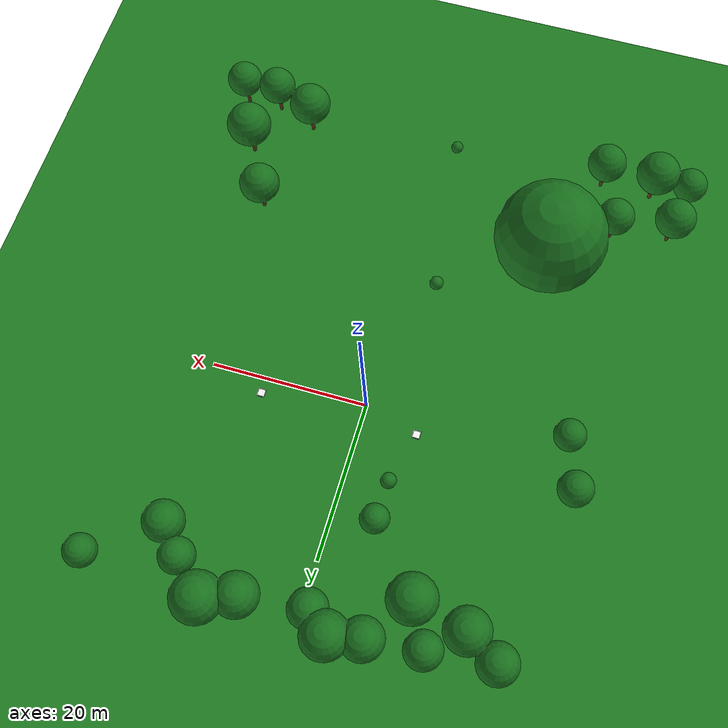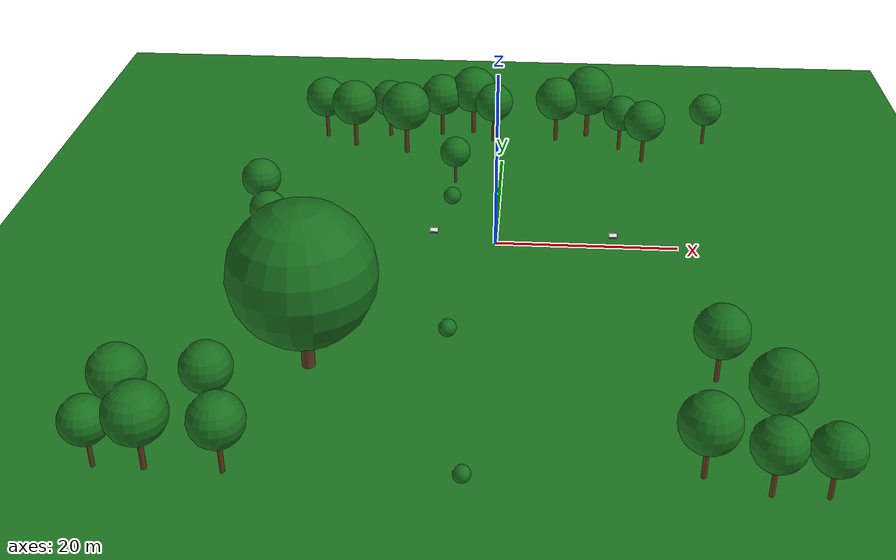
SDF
<sdf version="1.9">
 <world name="fei_lrs_precision_landing_world">
  <plugin filename="gz-sim-physics-system" name="gz::sim::systems::Physics"/>
  <plugin filename="gz-sim-sensors-system" name="gz::sim::systems::Sensors">
   <render_engine>ogre2</render_engine>
  </plugin>
  <plugin filename="gz-sim-user-commands-system" name="gz::sim::systems::UserCommands"/>
  <plugin filename="gz-sim-scene-broadcaster-system" name="gz::sim::systems::SceneBroadcaster"/>
  <plugin filename="gz-sim-imu-system" name="gz::sim::systems::Imu"/>
  <plugin filename="gz-sim-navsat-system" name="gz::sim::systems::NavSat"/>
  <plugin filename="gz-sim-contact-system" name="gz::sim::systems::Contact"/>
  <model name="ground_plane">
   <static>true</static>
   <link name="link">
    <collision name="collision">
     <geometry><plane><normal>0 0 1</normal><size>120 120</size></plane></geometry>
     <surface>
      <contact><collide_bitmask>65535</collide_bitmask></contact>
      <friction><ode><mu>100</mu><mu2>50</mu2></ode></friction>
     </surface>
    </collision>
    <visual name="visual">
     <cast_shadows>false</cast_shadows>
     <geometry><plane><normal>0 0 1</normal><size>120 120</size></plane></geometry>
     <material>
      <ambient>0.05 0.20 0.05 1</ambient>
      <diffuse>0.13 0.50 0.14 1</diffuse>
      <specular>0.02 0.04 0.02 1</specular>
     </material>
    </visual>
   </link>
  </model>
  <light name="sun" type="directional">
   <pose>0 0 10 0 0 0</pose>
   <diffuse>0.800000012 0.800000012 0.800000012 1</diffuse>
   <specular>0.200000003 0.200000003 0.200000003 1</specular>
   <attenuation>
    <range>1000</range>
    <constant>0.90000000000000002</constant>
    <linear>0.01</linear>
    <quadratic>0.001</quadratic>
   </attenuation>
   <direction>-0.5 0.10000000000000001 -0.90000000000000002</direction>
   <spot><inner_angle>0</inner_angle><outer_angle>0</outer_angle><falloff>0</falloff></spot>
  </light>
  <model name="tree_n1">
   <static>true</static>
   <pose>-22.80 26.10 0 0 0 0</pose>
   <link name="link">
    <visual name="trunk">
     <pose>0 0 2.00 0 0 0</pose>
     <geometry><cylinder><radius>0.22</radius><length>4.00</length></cylinder></geometry>
     <material>
      <ambient>0.25 0.15 0.06 1</ambient>
      <diffuse>0.35 0.22 0.10 1</diffuse>
      <specular>0.05 0.05 0.05 1</specular>
     </material>
    </visual>
    <visual name="canopy">
     <pose>0 0 5.50 0 0 0</pose>
     <geometry><sphere><radius>2.50</radius></sphere></geometry>
     <material>
      <ambient>0.05 0.18 0.05 1</ambient>
      <diffuse>0.10 0.45 0.12 1</diffuse>
      <specular>0.02 0.05 0.02 1</specular>
     </material>
    </visual>
    <collision name="collision">
     <pose>0 0 4.00 0 0 0</pose>
     <geometry><cylinder><radius>1.38</radius><length>8.00</length></cylinder></geometry>
    </collision>
   </link>
  </model>
  <model name="tree_n2">
   <static>true</static>
   <pose>-18.80 23.70 0 0 0 0</pose>
   <link name="link">
    <visual name="trunk">
     <pose>0 0 2.10 0 0 0</pose>
     <geometry><cylinder><radius>0.25</radius><length>4.20</length></cylinder></geometry>
     <material>
      <ambient>0.25 0.15 0.06 1</ambient>
      <diffuse>0.35 0.22 0.10 1</diffuse>
      <specular>0.05 0.05 0.05 1</specular>
     </material>
    </visual>
    <visual name="canopy">
     <pose>0 0 5.88 0 0 0</pose>
     <geometry><sphere><radius>2.80</radius></sphere></geometry>
     <material>
      <ambient>0.05 0.18 0.05 1</ambient>
      <diffuse>0.10 0.45 0.12 1</diffuse>
      <specular>0.02 0.05 0.02 1</specular>
     </material>
    </visual>
    <collision name="collision">
     <pose>0 0 4.34 0 0 0</pose>
     <geometry><cylinder><radius>1.54</radius><length>8.68</length></cylinder></geometry>
    </collision>
   </link>
  </model>
  <model name="tree_n3">
   <static>true</static>
   <pose>-14.70 26.90 0 0 0 0</pose>
   <link name="link">
    <visual name="trunk">
     <pose>0 0 1.90 0 0 0</pose>
     <geometry><cylinder><radius>0.21</radius><length>3.80</length></cylinder></geometry>
     <material>
      <ambient>0.25 0.15 0.06 1</ambient>
      <diffuse>0.35 0.22 0.10 1</diffuse>
      <specular>0.05 0.05 0.05 1</specular>
     </material>
    </visual>
    <visual name="canopy">
     <pose>0 0 5.18 0 0 0</pose>
     <geometry><sphere><radius>2.30</radius></sphere></geometry>
     <material>
      <ambient>0.05 0.18 0.05 1</ambient>
      <diffuse>0.10 0.45 0.12 1</diffuse>
      <specular>0.02 0.05 0.02 1</specular>
     </material>
    </visual>
    <collision name="collision">
     <pose>0 0 3.74 0 0 0</pose>
     <geometry><cylinder><radius>1.26</radius><length>7.48</length></cylinder></geometry>
    </collision>
   </link>
  </model>
  <model name="tree_n4">
   <static>true</static>
   <pose>-12.10 22.10 0 0 0 0</pose>
   <link name="link">
    <visual name="trunk">
     <pose>0 0 2.25 0 0 0</pose>
     <geometry><cylinder><radius>0.27</radius><length>4.50</length></cylinder></geometry>
     <material>
      <ambient>0.25 0.15 0.06 1</ambient>
      <diffuse>0.35 0.22 0.10 1</diffuse>
      <specular>0.05 0.05 0.05 1</specular>
     </material>
    </visual>
    <visual name="canopy">
     <pose>0 0 6.30 0 0 0</pose>
     <geometry><sphere><radius>3.00</radius></sphere></geometry>
     <material>
      <ambient>0.05 0.18 0.05 1</ambient>
      <diffuse>0.10 0.45 0.12 1</diffuse>
      <specular>0.02 0.05 0.02 1</specular>
     </material>
    </visual>
    <collision name="collision">
     <pose>0 0 4.65 0 0 0</pose>
     <geometry><cylinder><radius>1.65</radius><length>9.30</length></cylinder></geometry>
    </collision>
   </link>
  </model>
  <model name="tree_n5">
   <static>true</static>
   <pose>-8.00 27.60 0 0 0 0</pose>
   <link name="link">
    <visual name="trunk">
     <pose>0 0 2.00 0 0 0</pose>
     <geometry><cylinder><radius>0.23</radius><length>4.00</length></cylinder></geometry>
     <material>
      <ambient>0.25 0.15 0.06 1</ambient>
      <diffuse>0.35 0.22 0.10 1</diffuse>
      <specular>0.05 0.05 0.05 1</specular>
     </material>
    </visual>
    <visual name="canopy">
     <pose>0 0 5.56 0 0 0</pose>
     <geometry><sphere><radius>2.60</radius></sphere></geometry>
     <material>
      <ambient>0.05 0.18 0.05 1</ambient>
      <diffuse>0.10 0.45 0.12 1</diffuse>
      <specular>0.02 0.05 0.02 1</specular>
     </material>
    </visual>
    <collision name="collision">
     <pose>0 0 4.08 0 0 0</pose>
     <geometry><cylinder><radius>1.43</radius><length>8.16</length></cylinder></geometry>
    </collision>
   </link>
  </model>
  <model name="tree_n6">
   <static>true</static>
   <pose>-4.00 28.40 0 0 0 0</pose>
   <link name="link">
    <visual name="trunk">
     <pose>0 0 2.15 0 0 0</pose>
     <geometry><cylinder><radius>0.26</radius><length>4.30</length></cylinder></geometry>
     <material>
      <ambient>0.25 0.15 0.06 1</ambient>
      <diffuse>0.35 0.22 0.10 1</diffuse>
      <specular>0.05 0.05 0.05 1</specular>
     </material>
    </visual>
    <visual name="canopy">
     <pose>0 0 6.04 0 0 0</pose>
     <geometry><sphere><radius>2.90</radius></sphere></geometry>
     <material>
      <ambient>0.05 0.18 0.05 1</ambient>
      <diffuse>0.10 0.45 0.12 1</diffuse>
      <specular>0.02 0.05 0.02 1</specular>
     </material>
    </visual>
    <collision name="collision">
     <pose>0 0 4.47 0 0 0</pose>
     <geometry><cylinder><radius>1.59</radius><length>8.94</length></cylinder></geometry>
    </collision>
   </link>
  </model>
  <model name="tree_n7">
   <static>true</static>
   <pose>-1.30 26.10 0 0 0 0</pose>
   <link name="link">
    <visual name="trunk">
     <pose>0 0 1.95 0 0 0</pose>
     <geometry><cylinder><radius>0.22</radius><length>3.90</length></cylinder></geometry>
     <material>
      <ambient>0.25 0.15 0.06 1</ambient>
      <diffuse>0.35 0.22 0.10 1</diffuse>
      <specular>0.05 0.05 0.05 1</specular>
     </material>
    </visual>
    <visual name="canopy">
     <pose>0 0 5.34 0 0 0</pose>
     <geometry><sphere><radius>2.40</radius></sphere></geometry>
     <material>
      <ambient>0.05 0.18 0.05 1</ambient>
      <diffuse>0.10 0.45 0.12 1</diffuse>
      <specular>0.02 0.05 0.02 1</specular>
     </material>
    </visual>
    <collision name="collision">
     <pose>0 0 3.87 0 0 0</pose>
     <geometry><cylinder><radius>1.32</radius><length>7.74</length></cylinder></geometry>
    </collision>
   </link>
  </model>
  <model name="tree_n8">
   <static>true</static>
   <pose>6.70 26.90 0 0 0 0</pose>
   <link name="link">
    <visual name="trunk">
     <pose>0 0 2.05 0 0 0</pose>
     <geometry><cylinder><radius>0.24</radius><length>4.10</length></cylinder></geometry>
     <material>
      <ambient>0.25 0.15 0.06 1</ambient>
      <diffuse>0.35 0.22 0.10 1</diffuse>
      <specular>0.05 0.05 0.05 1</specular>
     </material>
    </visual>
    <visual name="canopy">
     <pose>0 0 5.72 0 0 0</pose>
     <geometry><sphere><radius>2.70</radius></sphere></geometry>
     <material>
      <ambient>0.05 0.18 0.05 1</ambient>
      <diffuse>0.10 0.45 0.12 1</diffuse>
      <specular>0.02 0.05 0.02 1</specular>
     </material>
    </visual>
    <collision name="collision">
     <pose>0 0 4.21 0 0 0</pose>
     <geometry><cylinder><radius>1.49</radius><length>8.42</length></cylinder></geometry>
    </collision>
   </link>
  </model>
  <model name="tree_n9">
   <static>true</static>
   <pose>10.70 28.40 0 0 0 0</pose>
   <link name="link">
    <visual name="trunk">
     <pose>0 0 2.20 0 0 0</pose>
     <geometry><cylinder><radius>0.28</radius><length>4.40</length></cylinder></geometry>
     <material>
      <ambient>0.25 0.15 0.06 1</ambient>
      <diffuse>0.35 0.22 0.10 1</diffuse>
      <specular>0.05 0.05 0.05 1</specular>
     </material>
    </visual>
    <visual name="canopy">
     <pose>0 0 6.26 0 0 0</pose>
     <geometry><sphere><radius>3.10</radius></sphere></geometry>
     <material>
      <ambient>0.05 0.18 0.05 1</ambient>
      <diffuse>0.10 0.45 0.12 1</diffuse>
      <specular>0.02 0.05 0.02 1</specular>
     </material>
    </visual>
    <collision name="collision">
     <pose>0 0 4.68 0 0 0</pose>
     <geometry><cylinder><radius>1.71</radius><length>9.36</length></cylinder></geometry>
    </collision>
   </link>
  </model>
  <model name="tree_n10">
   <static>true</static>
   <pose>14.70 24.50 0 0 0 0</pose>
   <link name="link">
    <visual name="trunk">
     <pose>0 0 1.85 0 0 0</pose>
     <geometry><cylinder><radius>0.20</radius><length>3.70</length></cylinder></geometry>
     <material>
      <ambient>0.25 0.15 0.06 1</ambient>
      <diffuse>0.35 0.22 0.10 1</diffuse>
      <specular>0.05 0.05 0.05 1</specular>
     </material>
    </visual>
    <visual name="canopy">
     <pose>0 0 5.02 0 0 0</pose>
     <geometry><sphere><radius>2.20</radius></sphere></geometry>
     <material>
      <ambient>0.05 0.18 0.05 1</ambient>
      <diffuse>0.10 0.45 0.12 1</diffuse>
      <specular>0.02 0.05 0.02 1</specular>
     </material>
    </visual>
    <collision name="collision">
     <pose>0 0 3.61 0 0 0</pose>
     <geometry><cylinder><radius>1.21</radius><length>7.22</length></cylinder></geometry>
    </collision>
   </link>
  </model>
  <model name="tree_n11">
   <static>true</static>
   <pose>17.40 21.30 0 0 0 0</pose>
   <link name="link">
    <visual name="trunk">
     <pose>0 0 2.00 0 0 0</pose>
     <geometry><cylinder><radius>0.22</radius><length>4.00</length></cylinder></geometry>
     <material>
      <ambient>0.25 0.15 0.06 1</ambient>
      <diffuse>0.35 0.22 0.10 1</diffuse>
      <specular>0.05 0.05 0.05 1</specular>
     </material>
    </visual>
    <visual name="canopy">
     <pose>0 0 5.50 0 0 0</pose>
     <geometry><sphere><radius>2.50</radius></sphere></geometry>
     <material>
      <ambient>0.05 0.18 0.05 1</ambient>
      <diffuse>0.10 0.45 0.12 1</diffuse>
      <specular>0.02 0.05 0.02 1</specular>
     </material>
    </visual>
    <collision name="collision">
     <pose>0 0 4.00 0 0 0</pose>
     <geometry><cylinder><radius>1.38</radius><length>8.00</length></cylinder></geometry>
    </collision>
   </link>
  </model>
  <model name="tree_n12">
   <static>true</static>
   <pose>25.50 26.90 0 0 0 0</pose>
   <link name="link">
    <visual name="trunk">
     <pose>0 0 1.75 0 0 0</pose>
     <geometry><cylinder><radius>0.18</radius><length>3.50</length></cylinder></geometry>
     <material>
      <ambient>0.25 0.15 0.06 1</ambient>
      <diffuse>0.35 0.22 0.10 1</diffuse>
      <specular>0.05 0.05 0.05 1</specular>
     </material>
    </visual>
    <visual name="canopy">
     <pose>0 0 4.70 0 0 0</pose>
     <geometry><sphere><radius>2.00</radius></sphere></geometry>
     <material>
      <ambient>0.05 0.18 0.05 1</ambient>
      <diffuse>0.10 0.45 0.12 1</diffuse>
      <specular>0.02 0.05 0.02 1</specular>
     </material>
    </visual>
    <collision name="collision">
     <pose>0 0 3.35 0 0 0</pose>
     <geometry><cylinder><radius>1.10</radius><length>6.70</length></cylinder></geometry>
    </collision>
   </link>
  </model>
  <model name="tree_mid1">
   <static>true</static>
   <pose>-5.40 14.20 0 0 0 0</pose>
   <link name="link">
    <visual name="trunk">
     <pose>0 0 1.50 0 0 0</pose>
     <geometry><cylinder><radius>0.16</radius><length>3.00</length></cylinder></geometry>
     <material>
      <ambient>0.25 0.15 0.06 1</ambient>
      <diffuse>0.35 0.22 0.10 1</diffuse>
      <specular>0.05 0.05 0.05 1</specular>
     </material>
    </visual>
    <visual name="canopy">
     <pose>0 0 4.08 0 0 0</pose>
     <geometry><sphere><radius>1.80</radius></sphere></geometry>
     <material>
      <ambient>0.05 0.18 0.05 1</ambient>
      <diffuse>0.10 0.45 0.12 1</diffuse>
      <specular>0.02 0.05 0.02 1</specular>
     </material>
    </visual>
    <collision name="collision">
     <pose>0 0 2.94 0 0 0</pose>
     <geometry><cylinder><radius>0.99</radius><length>5.88</length></cylinder></geometry>
    </collision>
   </link>
  </model>
  <model name="tree_w1">
   <static>true</static>
   <pose>-26.80 4.70 0 0 0 0</pose>
   <link name="link">
    <visual name="trunk">
     <pose>0 0 1.75 0 0 0</pose>
     <geometry><cylinder><radius>0.20</radius><length>3.50</length></cylinder></geometry>
     <material>
      <ambient>0.25 0.15 0.06 1</ambient>
      <diffuse>0.35 0.22 0.10 1</diffuse>
      <specular>0.05 0.05 0.05 1</specular>
     </material>
    </visual>
    <visual name="canopy">
     <pose>0 0 4.82 0 0 0</pose>
     <geometry><sphere><radius>2.20</radius></sphere></geometry>
     <material>
      <ambient>0.05 0.18 0.05 1</ambient>
      <diffuse>0.10 0.45 0.12 1</diffuse>
      <specular>0.02 0.05 0.02 1</specular>
     </material>
    </visual>
    <collision name="collision">
     <pose>0 0 3.51 0 0 0</pose>
     <geometry><cylinder><radius>1.21</radius><length>7.02</length></cylinder></geometry>
    </collision>
   </link>
  </model>
  <model name="tree_w2">
   <static>true</static>
   <pose>-24.80 -1.60 0 0 0 0</pose>
   <link name="link">
    <visual name="trunk">
     <pose>0 0 1.60 0 0 0</pose>
     <geometry><cylinder><radius>0.18</radius><length>3.20</length></cylinder></geometry>
     <material>
      <ambient>0.25 0.15 0.06 1</ambient>
      <diffuse>0.35 0.22 0.10 1</diffuse>
      <specular>0.05 0.05 0.05 1</specular>
     </material>
    </visual>
    <visual name="canopy">
     <pose>0 0 4.40 0 0 0</pose>
     <geometry><sphere><radius>2.00</radius></sphere></geometry>
     <material>
      <ambient>0.05 0.18 0.05 1</ambient>
      <diffuse>0.10 0.45 0.12 1</diffuse>
      <specular>0.02 0.05 0.02 1</specular>
     </material>
    </visual>
    <collision name="collision">
     <pose>0 0 3.20 0 0 0</pose>
     <geometry><cylinder><radius>1.10</radius><length>6.40</length></cylinder></geometry>
    </collision>
   </link>
  </model>
  <model name="tree_big">
   <static>true</static>
   <pose>-16.75 -23.70 0 0 0 0</pose>
   <link name="link">
    <visual name="trunk">
     <pose>0 0 3.00 0 0 0</pose>
     <geometry><cylinder><radius>0.63</radius><length>6.00</length></cylinder></geometry>
     <material>
      <ambient>0.25 0.15 0.06 1</ambient>
      <diffuse>0.35 0.22 0.10 1</diffuse>
      <specular>0.05 0.05 0.05 1</specular>
     </material>
    </visual>
    <visual name="canopy">
     <pose>0 0 10.20 0 0 0</pose>
     <geometry><sphere><radius>7.00</radius></sphere></geometry>
     <material>
      <ambient>0.05 0.18 0.05 1</ambient>
      <diffuse>0.10 0.45 0.12 1</diffuse>
      <specular>0.02 0.05 0.02 1</specular>
     </material>
    </visual>
    <collision name="collision">
     <pose>0 0 8.60 0 0 0</pose>
     <geometry><cylinder><radius>3.85</radius><length>17.20</length></cylinder></geometry>
    </collision>
   </link>
  </model>
  <model name="tree_bl1">
   <static>true</static>
   <pose>-31.50 -33.20 0 0 0 0</pose>
   <link name="link">
    <visual name="trunk">
     <pose>0 0 2.00 0 0 0</pose>
     <geometry><cylinder><radius>0.23</radius><length>4.00</length></cylinder></geometry>
     <material>
      <ambient>0.25 0.15 0.06 1</ambient>
      <diffuse>0.35 0.22 0.10 1</diffuse>
      <specular>0.05 0.05 0.05 1</specular>
     </material>
    </visual>
    <visual name="canopy">
     <pose>0 0 5.56 0 0 0</pose>
     <geometry><sphere><radius>2.60</radius></sphere></geometry>
     <material>
      <ambient>0.05 0.18 0.05 1</ambient>
      <diffuse>0.10 0.45 0.12 1</diffuse>
      <specular>0.02 0.05 0.02 1</specular>
     </material>
    </visual>
    <collision name="collision">
     <pose>0 0 4.08 0 0 0</pose>
     <geometry><cylinder><radius>1.43</radius><length>8.16</length></cylinder></geometry>
    </collision>
   </link>
  </model>
  <model name="tree_bl2">
   <static>true</static>
   <pose>-28.10 -39.00 0 0 0 0</pose>
   <link name="link">
    <visual name="trunk">
     <pose>0 0 2.10 0 0 0</pose>
     <geometry><cylinder><radius>0.25</radius><length>4.20</length></cylinder></geometry>
     <material>
      <ambient>0.25 0.15 0.06 1</ambient>
      <diffuse>0.35 0.22 0.10 1</diffuse>
      <specular>0.05 0.05 0.05 1</specular>
     </material>
    </visual>
    <visual name="canopy">
     <pose>0 0 5.88 0 0 0</pose>
     <geometry><sphere><radius>2.80</radius></sphere></geometry>
     <material>
      <ambient>0.05 0.18 0.05 1</ambient>
      <diffuse>0.10 0.45 0.12 1</diffuse>
      <specular>0.02 0.05 0.02 1</specular>
     </material>
    </visual>
    <collision name="collision">
     <pose>0 0 4.34 0 0 0</pose>
     <geometry><cylinder><radius>1.54</radius><length>8.68</length></cylinder></geometry>
    </collision>
   </link>
  </model>
  <model name="tree_bl3">
   <static>true</static>
   <pose>-24.10 -31.60 0 0 0 0</pose>
   <link name="link">
    <visual name="trunk">
     <pose>0 0 1.90 0 0 0</pose>
     <geometry><cylinder><radius>0.22</radius><length>3.80</length></cylinder></geometry>
     <material>
      <ambient>0.25 0.15 0.06 1</ambient>
      <diffuse>0.35 0.22 0.10 1</diffuse>
      <specular>0.05 0.05 0.05 1</specular>
     </material>
    </visual>
    <visual name="canopy">
     <pose>0 0 5.24 0 0 0</pose>
     <geometry><sphere><radius>2.40</radius></sphere></geometry>
     <material>
      <ambient>0.05 0.18 0.05 1</ambient>
      <diffuse>0.10 0.45 0.12 1</diffuse>
      <specular>0.02 0.05 0.02 1</specular>
     </material>
    </visual>
    <collision name="collision">
     <pose>0 0 3.82 0 0 0</pose>
     <geometry><cylinder><radius>1.32</radius><length>7.64</length></cylinder></geometry>
    </collision>
   </link>
  </model>
  <model name="tree_bl4">
   <static>true</static>
   <pose>-32.50 -39.00 0 0 0 0</pose>
   <link name="link">
    <visual name="trunk">
     <pose>0 0 1.80 0 0 0</pose>
     <geometry><cylinder><radius>0.20</radius><length>3.60</length></cylinder></geometry>
     <material>
      <ambient>0.25 0.15 0.06 1</ambient>
      <diffuse>0.35 0.22 0.10 1</diffuse>
      <specular>0.05 0.05 0.05 1</specular>
     </material>
    </visual>
    <visual name="canopy">
     <pose>0 0 4.92 0 0 0</pose>
     <geometry><sphere><radius>2.20</radius></sphere></geometry>
     <material>
      <ambient>0.05 0.18 0.05 1</ambient>
      <diffuse>0.10 0.45 0.12 1</diffuse>
      <specular>0.02 0.05 0.02 1</specular>
     </material>
    </visual>
    <collision name="collision">
     <pose>0 0 3.56 0 0 0</pose>
     <geometry><cylinder><radius>1.21</radius><length>7.12</length></cylinder></geometry>
    </collision>
   </link>
  </model>
  <model name="tree_bl5">
   <static>true</static>
   <pose>-21.40 -39.00 0 0 0 0</pose>
   <link name="link">
    <visual name="trunk">
     <pose>0 0 2.00 0 0 0</pose>
     <geometry><cylinder><radius>0.22</radius><length>4.00</length></cylinder></geometry>
     <material>
      <ambient>0.25 0.15 0.06 1</ambient>
      <diffuse>0.35 0.22 0.10 1</diffuse>
      <specular>0.05 0.05 0.05 1</specular>
     </material>
    </visual>
    <visual name="canopy">
     <pose>0 0 5.50 0 0 0</pose>
     <geometry><sphere><radius>2.50</radius></sphere></geometry>
     <material>
      <ambient>0.05 0.18 0.05 1</ambient>
      <diffuse>0.10 0.45 0.12 1</diffuse>
      <specular>0.02 0.05 0.02 1</specular>
     </material>
    </visual>
    <collision name="collision">
     <pose>0 0 4.00 0 0 0</pose>
     <geometry><cylinder><radius>1.38</radius><length>8.00</length></cylinder></geometry>
    </collision>
   </link>
  </model>
  <model name="tree_br1">
   <static>true</static>
   <pose>21.40 -23.70 0 0 0 0</pose>
   <link name="link">
    <visual name="trunk">
     <pose>0 0 2.00 0 0 0</pose>
     <geometry><cylinder><radius>0.23</radius><length>4.00</length></cylinder></geometry>
     <material>
      <ambient>0.25 0.15 0.06 1</ambient>
      <diffuse>0.35 0.22 0.10 1</diffuse>
      <specular>0.05 0.05 0.05 1</specular>
     </material>
    </visual>
    <visual name="canopy">
     <pose>0 0 5.56 0 0 0</pose>
     <geometry><sphere><radius>2.60</radius></sphere></geometry>
     <material>
      <ambient>0.05 0.18 0.05 1</ambient>
      <diffuse>0.10 0.45 0.12 1</diffuse>
      <specular>0.02 0.05 0.02 1</specular>
     </material>
    </visual>
    <collision name="collision">
     <pose>0 0 4.08 0 0 0</pose>
     <geometry><cylinder><radius>1.43</radius><length>8.16</length></cylinder></geometry>
    </collision>
   </link>
  </model>
  <model name="tree_br2">
   <static>true</static>
   <pose>25.50 -31.60 0 0 0 0</pose>
   <link name="link">
    <visual name="trunk">
     <pose>0 0 2.15 0 0 0</pose>
     <geometry><cylinder><radius>0.26</radius><length>4.30</length></cylinder></geometry>
     <material>
      <ambient>0.25 0.15 0.06 1</ambient>
      <diffuse>0.35 0.22 0.10 1</diffuse>
      <specular>0.05 0.05 0.05 1</specular>
     </material>
    </visual>
    <visual name="canopy">
     <pose>0 0 6.04 0 0 0</pose>
     <geometry><sphere><radius>2.90</radius></sphere></geometry>
     <material>
      <ambient>0.05 0.18 0.05 1</ambient>
      <diffuse>0.10 0.45 0.12 1</diffuse>
      <specular>0.02 0.05 0.02 1</specular>
     </material>
    </visual>
    <collision name="collision">
     <pose>0 0 4.47 0 0 0</pose>
     <geometry><cylinder><radius>1.59</radius><length>8.94</length></cylinder></geometry>
    </collision>
   </link>
  </model>
  <model name="tree_br3">
   <static>true</static>
   <pose>28.80 -39.00 0 0 0 0</pose>
   <link name="link">
    <visual name="trunk">
     <pose>0 0 1.85 0 0 0</pose>
     <geometry><cylinder><radius>0.21</radius><length>3.70</length></cylinder></geometry>
     <material>
      <ambient>0.25 0.15 0.06 1</ambient>
      <diffuse>0.35 0.22 0.10 1</diffuse>
      <specular>0.05 0.05 0.05 1</specular>
     </material>
    </visual>
    <visual name="canopy">
     <pose>0 0 5.08 0 0 0</pose>
     <geometry><sphere><radius>2.30</radius></sphere></geometry>
     <material>
      <ambient>0.05 0.18 0.05 1</ambient>
      <diffuse>0.10 0.45 0.12 1</diffuse>
      <specular>0.02 0.05 0.02 1</specular>
     </material>
    </visual>
    <collision name="collision">
     <pose>0 0 3.69 0 0 0</pose>
     <geometry><cylinder><radius>1.26</radius><length>7.38</length></cylinder></geometry>
    </collision>
   </link>
  </model>
  <model name="tree_br4">
   <static>true</static>
   <pose>18.80 -37.10 0 0 0 0</pose>
   <link name="link">
    <visual name="trunk">
     <pose>0 0 2.05 0 0 0</pose>
     <geometry><cylinder><radius>0.24</radius><length>4.10</length></cylinder></geometry>
     <material>
      <ambient>0.25 0.15 0.06 1</ambient>
      <diffuse>0.35 0.22 0.10 1</diffuse>
      <specular>0.05 0.05 0.05 1</specular>
     </material>
    </visual>
    <visual name="canopy">
     <pose>0 0 5.72 0 0 0</pose>
     <geometry><sphere><radius>2.70</radius></sphere></geometry>
     <material>
      <ambient>0.05 0.18 0.05 1</ambient>
      <diffuse>0.10 0.45 0.12 1</diffuse>
      <specular>0.02 0.05 0.02 1</specular>
     </material>
    </visual>
    <collision name="collision">
     <pose>0 0 4.21 0 0 0</pose>
     <geometry><cylinder><radius>1.49</radius><length>8.42</length></cylinder></geometry>
    </collision>
   </link>
  </model>
  <model name="tree_br5">
   <static>true</static>
   <pose>24.10 -39.00 0 0 0 0</pose>
   <link name="link">
    <visual name="trunk">
     <pose>0 0 1.95 0 0 0</pose>
     <geometry><cylinder><radius>0.22</radius><length>3.90</length></cylinder></geometry>
     <material>
      <ambient>0.25 0.15 0.06 1</ambient>
      <diffuse>0.35 0.22 0.10 1</diffuse>
      <specular>0.05 0.05 0.05 1</specular>
     </material>
    </visual>
    <visual name="canopy">
     <pose>0 0 5.34 0 0 0</pose>
     <geometry><sphere><radius>2.40</radius></sphere></geometry>
     <material>
      <ambient>0.05 0.18 0.05 1</ambient>
      <diffuse>0.10 0.45 0.12 1</diffuse>
      <specular>0.02 0.05 0.02 1</specular>
     </material>
    </visual>
    <collision name="collision">
     <pose>0 0 3.87 0 0 0</pose>
     <geometry><cylinder><radius>1.32</radius><length>7.74</length></cylinder></geometry>
    </collision>
   </link>
  </model>
  <model name="bush1">
   <static>true</static>
   <pose>-5.40 8.70 0 0 0 0</pose>
   <link name="link">
    <visual name="canopy">
     <pose>0 0 1.10 0 0 0</pose>
     <geometry><sphere><radius>1.00</radius></sphere></geometry>
     <material>
      <ambient>0.05 0.18 0.05 1</ambient>
      <diffuse>0.10 0.45 0.12 1</diffuse>
      <specular>0.02 0.05 0.02 1</specular>
     </material>
    </visual>
    <collision name="collision">
     <pose>0 0 1.05 0 0 0</pose>
     <geometry><cylinder><radius>0.55</radius><length>2.10</length></cylinder></geometry>
    </collision>
   </link>
  </model>
  <model name="bush2">
   <static>true</static>
   <pose>-4.00 -18.20 0 0 0 0</pose>
   <link name="link">
    <visual name="canopy">
     <pose>0 0 1.04 0 0 0</pose>
     <geometry><sphere><radius>0.90</radius></sphere></geometry>
     <material>
      <ambient>0.05 0.18 0.05 1</ambient>
      <diffuse>0.10 0.45 0.12 1</diffuse>
      <specular>0.02 0.05 0.02 1</specular>
     </material>
    </visual>
    <collision name="collision">
     <pose>0 0 0.97 0 0 0</pose>
     <geometry><cylinder><radius>0.50</radius><length>1.94</length></cylinder></geometry>
    </collision>
   </link>
  </model>
  <model name="bush3">
   <static>true</static>
   <pose>-1.30 -39.00 0 0 0 0</pose>
   <link name="link">
    <visual name="canopy">
     <pose>0 0 0.88 0 0 0</pose>
     <geometry><sphere><radius>0.80</radius></sphere></geometry>
     <material>
      <ambient>0.05 0.18 0.05 1</ambient>
      <diffuse>0.10 0.45 0.12 1</diffuse>
      <specular>0.02 0.05 0.02 1</specular>
     </material>
    </visual>
    <collision name="collision">
     <pose>0 0 0.84 0 0 0</pose>
     <geometry><cylinder><radius>0.44</radius><length>1.68</length></cylinder></geometry>
    </collision>
   </link>
  </model>
  <include>
   <uri>model://aruco_rover_1</uri>
   <name>aruco_rover_1</name>
   <pose>-7.0 2.0 0 0 0 1.5708</pose>
  </include>
  <include>
   <uri>model://aruco_rover_2</uri>
   <name>aruco_rover_2</name>
   <pose>13.0 2.0 0 0 0 1.5708</pose>
  </include>
  <gravity>0 0 -9.8000000000000007</gravity>
  <magnetic_field>6.0000000000000002e-06 2.3e-05 -4.1999999999999998e-05</magnetic_field>
  <atmosphere type="adiabatic"/>
  <physics name="default_physics" default="false" type="ode">
   <max_step_size>0.001</max_step_size>
   <real_time_factor>1</real_time_factor>
   <real_time_update_rate>1000</real_time_update_rate>
  </physics>
  <scene>
   <ambient>0.400000006 0.400000006 0.400000006 1</ambient>
   <background>0.699999988 0.699999988 0.699999988 1</background>
   <shadows>true</shadows>
  </scene>
  <spherical_coordinates>
   <surface_model>EARTH_WGS84</surface_model>
   <latitude_deg>48.15144444</latitude_deg>
   <longitude_deg>17.07375000</longitude_deg>
   <elevation>0</elevation>
   <heading_deg>0</heading_deg>
  </spherical_coordinates>
 </world>
</sdf>

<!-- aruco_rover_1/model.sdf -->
<sdf version="1.9">
  <!-- Generated by scripts/generate_precision_landing.py - do not edit by hand. -->
  <model name="aruco_rover_1">
    <link name="base_link">
      <inertial>
        <mass>20</mass>
        <inertia>
          <ixx>1.2</ixx><ixy>0</ixy><ixz>0</ixz>
          <iyy>1.6</iyy><iyz>0</iyz><izz>2.0</izz>
        </inertia>
        <pose>0 0 0.2 0 0 0</pose>
      </inertial>

      <visual name='chassis'>
        <pose>0 0 0.22 0 0 0</pose>
        <geometry>
          <box><size>1.00 0.80 0.16</size></box>
        </geometry>
        <material>
          <ambient>0.15 0.15 0.17 1</ambient>
          <diffuse>0.35 0.36 0.40 1</diffuse>
          <specular>0.10 0.10 0.10 1</specular>
        </material>
      </visual>
        <visual name='wheel_0'>
          <pose>0.3 0.33 0.12 1.5708 0 0</pose>
          <geometry>
            <cylinder><radius>0.12</radius><length>0.09</length></cylinder>
          </geometry>
          <material>
            <ambient>0.02 0.02 0.02 1</ambient>
            <diffuse>0.10 0.10 0.10 1</diffuse>
            <specular>0.02 0.02 0.02 1</specular>
          </material>
        </visual>
        <visual name='wheel_1'>
          <pose>0.3 -0.33 0.12 1.5708 0 0</pose>
          <geometry>
            <cylinder><radius>0.12</radius><length>0.09</length></cylinder>
          </geometry>
          <material>
            <ambient>0.02 0.02 0.02 1</ambient>
            <diffuse>0.10 0.10 0.10 1</diffuse>
            <specular>0.02 0.02 0.02 1</specular>
          </material>
        </visual>
        <visual name='wheel_2'>
          <pose>-0.3 0.33 0.12 1.5708 0 0</pose>
          <geometry>
            <cylinder><radius>0.12</radius><length>0.09</length></cylinder>
          </geometry>
          <material>
            <ambient>0.02 0.02 0.02 1</ambient>
            <diffuse>0.10 0.10 0.10 1</diffuse>
            <specular>0.02 0.02 0.02 1</specular>
          </material>
        </visual>
        <visual name='wheel_3'>
          <pose>-0.3 -0.33 0.12 1.5708 0 0</pose>
          <geometry>
            <cylinder><radius>0.12</radius><length>0.09</length></cylinder>
          </geometry>
          <material>
            <ambient>0.02 0.02 0.02 1</ambient>
            <diffuse>0.10 0.10 0.10 1</diffuse>
            <specular>0.02 0.02 0.02 1</specular>
          </material>
        </visual>

      <!-- White plate the marker is printed on; gives the marker its quiet
           zone in 3D as well as in the texture. -->
      <visual name='pad'>
        <pose>0 0 0.305 0 0 0</pose>
        <geometry>
          <box><size>1.0 1.0 0.02</size></box>
        </geometry>
        <material>
          <ambient>0.85 0.85 0.85 1</ambient>
          <diffuse>0.95 0.95 0.95 1</diffuse>
          <specular>0.05 0.05 0.05 1</specular>
        </material>
      </visual>

      <!-- The marker itself, a hair above the plate so it never z-fights. -->
      <visual name='aruco_marker'>
        <pose>0 0 0.3165 0 0 0</pose>
        <geometry>
          <box><size>0.85 0.85 0.001</size></box>
        </geometry>
        <material>
          <ambient>1 1 1 1</ambient>
          <diffuse>1 1 1 1</diffuse>
          <specular>0 0 0 1</specular>
          <pbr>
            <metal>
              <albedo_map>model://aruco_rover_1/materials/textures/aruco_1.png</albedo_map>
              <metalness>0</metalness>
              <roughness>1</roughness>
            </metal>
          </pbr>
        </material>
      </visual>

      <!-- Single box collision covering chassis + pad, so a drone can rest on
           the pad surface at z = 0.315. -->
      <collision name='collision'>
        <pose>0 0 0.19 0 0 0</pose>
        <geometry>
          <box><size>1.00 0.80 0.25</size></box>
        </geometry>
        <surface>
          <friction>
            <ode><mu>100</mu><mu2>50</mu2></ode>
          </friction>
        </surface>
      </collision>
    </link>

    <plugin filename="gz-sim-velocity-control-system"
            name="gz::sim::systems::VelocityControl">
      <initial_linear>0.3 0 0</initial_linear>
      <initial_angular>0 0 0.100000</initial_angular>
    </plugin>

    <plugin filename="gz-sim-odometry-publisher-system"
            name="gz::sim::systems::OdometryPublisher">
      <odom_frame>world</odom_frame>
      <robot_base_frame>aruco_rover_1</robot_base_frame>
      <odom_publish_frequency>20</odom_publish_frequency>
      <odom_topic>model/aruco_rover_1/odometry</odom_topic>
    </plugin>
  </model>
</sdf>

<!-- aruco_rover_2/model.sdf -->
<sdf version="1.9">
  <!-- Generated by scripts/generate_precision_landing.py - do not edit by hand. -->
  <model name="aruco_rover_2">
    <link name="base_link">
      <inertial>
        <mass>20</mass>
        <inertia>
          <ixx>1.2</ixx><ixy>0</ixy><ixz>0</ixz>
          <iyy>1.6</iyy><iyz>0</iyz><izz>2.0</izz>
        </inertia>
        <pose>0 0 0.2 0 0 0</pose>
      </inertial>

      <visual name='chassis'>
        <pose>0 0 0.22 0 0 0</pose>
        <geometry>
          <box><size>1.00 0.80 0.16</size></box>
        </geometry>
        <material>
          <ambient>0.15 0.15 0.17 1</ambient>
          <diffuse>0.35 0.36 0.40 1</diffuse>
          <specular>0.10 0.10 0.10 1</specular>
        </material>
      </visual>
        <visual name='wheel_0'>
          <pose>0.3 0.33 0.12 1.5708 0 0</pose>
          <geometry>
            <cylinder><radius>0.12</radius><length>0.09</length></cylinder>
          </geometry>
          <material>
            <ambient>0.02 0.02 0.02 1</ambient>
            <diffuse>0.10 0.10 0.10 1</diffuse>
            <specular>0.02 0.02 0.02 1</specular>
          </material>
        </visual>
        <visual name='wheel_1'>
          <pose>0.3 -0.33 0.12 1.5708 0 0</pose>
          <geometry>
            <cylinder><radius>0.12</radius><length>0.09</length></cylinder>
          </geometry>
          <material>
            <ambient>0.02 0.02 0.02 1</ambient>
            <diffuse>0.10 0.10 0.10 1</diffuse>
            <specular>0.02 0.02 0.02 1</specular>
          </material>
        </visual>
        <visual name='wheel_2'>
          <pose>-0.3 0.33 0.12 1.5708 0 0</pose>
          <geometry>
            <cylinder><radius>0.12</radius><length>0.09</length></cylinder>
          </geometry>
          <material>
            <ambient>0.02 0.02 0.02 1</ambient>
            <diffuse>0.10 0.10 0.10 1</diffuse>
            <specular>0.02 0.02 0.02 1</specular>
          </material>
        </visual>
        <visual name='wheel_3'>
          <pose>-0.3 -0.33 0.12 1.5708 0 0</pose>
          <geometry>
            <cylinder><radius>0.12</radius><length>0.09</length></cylinder>
          </geometry>
          <material>
            <ambient>0.02 0.02 0.02 1</ambient>
            <diffuse>0.10 0.10 0.10 1</diffuse>
            <specular>0.02 0.02 0.02 1</specular>
          </material>
        </visual>

      <!-- White plate the marker is printed on; gives the marker its quiet
           zone in 3D as well as in the texture. -->
      <visual name='pad'>
        <pose>0 0 0.305 0 0 0</pose>
        <geometry>
          <box><size>1.0 1.0 0.02</size></box>
        </geometry>
        <material>
          <ambient>0.85 0.85 0.85 1</ambient>
          <diffuse>0.95 0.95 0.95 1</diffuse>
          <specular>0.05 0.05 0.05 1</specular>
        </material>
      </visual>

      <!-- The marker itself, a hair above the plate so it never z-fights. -->
      <visual name='aruco_marker'>
        <pose>0 0 0.3165 0 0 0</pose>
        <geometry>
          <box><size>0.85 0.85 0.001</size></box>
        </geometry>
        <material>
          <ambient>1 1 1 1</ambient>
          <diffuse>1 1 1 1</diffuse>
          <specular>0 0 0 1</specular>
          <pbr>
            <metal>
              <albedo_map>model://aruco_rover_2/materials/textures/aruco_2.png</albedo_map>
              <metalness>0</metalness>
              <roughness>1</roughness>
            </metal>
          </pbr>
        </material>
      </visual>

      <!-- Single box collision covering chassis + pad, so a drone can rest on
           the pad surface at z = 0.315. -->
      <collision name='collision'>
        <pose>0 0 0.19 0 0 0</pose>
        <geometry>
          <box><size>1.00 0.80 0.25</size></box>
        </geometry>
        <surface>
          <friction>
            <ode><mu>100</mu><mu2>50</mu2></ode>
          </friction>
        </surface>
      </collision>
    </link>

    <plugin filename="gz-sim-velocity-control-system"
            name="gz::sim::systems::VelocityControl">
      <initial_linear>0.3 0 0</initial_linear>
      <initial_angular>0 0 0.100000</initial_angular>
    </plugin>

    <plugin filename="gz-sim-odometry-publisher-system"
            name="gz::sim::systems::OdometryPublisher">
      <odom_frame>world</odom_frame>
      <robot_base_frame>aruco_rover_2</robot_base_frame>
      <odom_publish_frequency>20</odom_publish_frequency>
      <odom_topic>model/aruco_rover_2/odometry</odom_topic>
    </plugin>
  </model>
</sdf>
